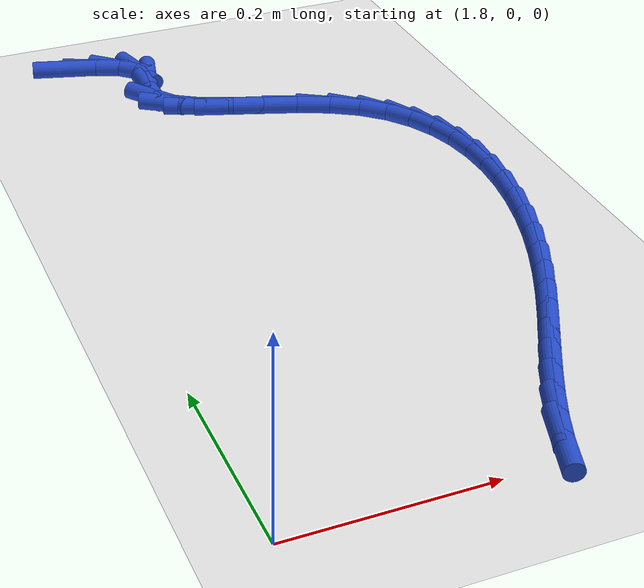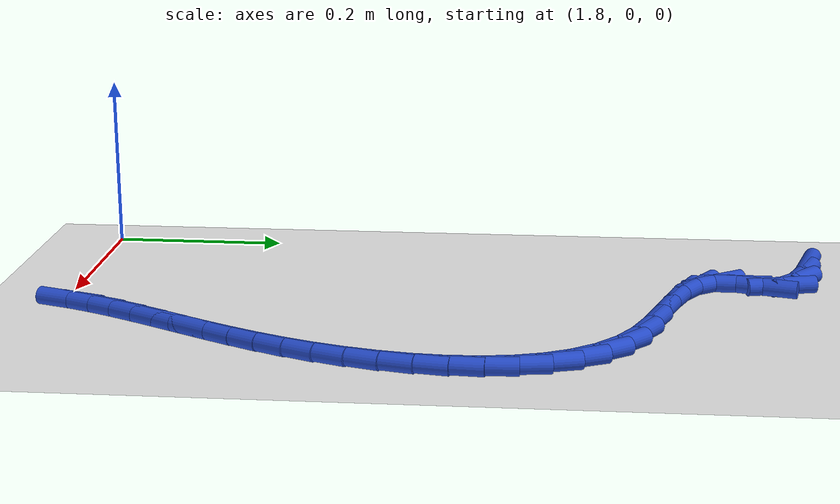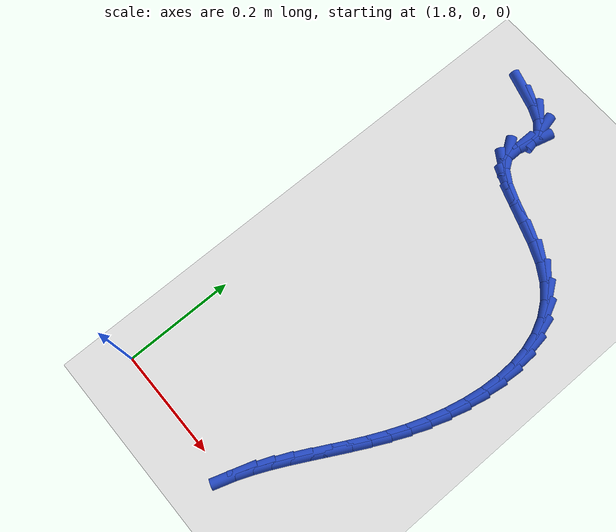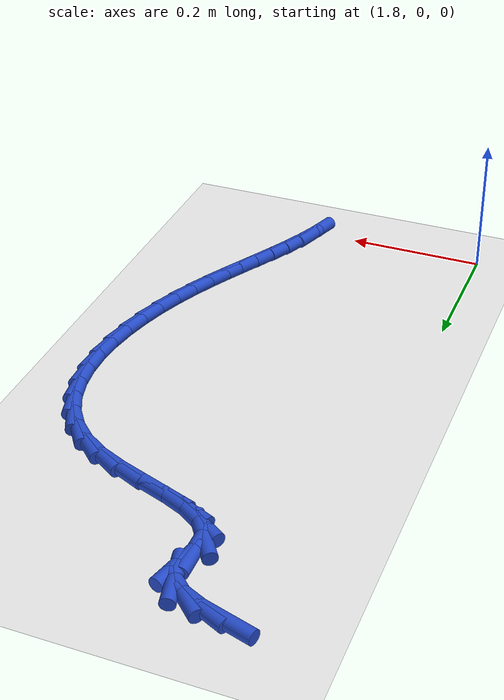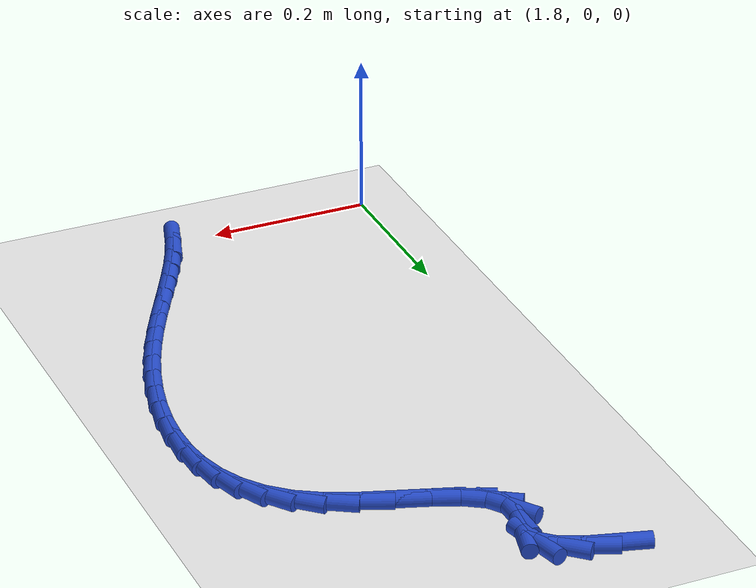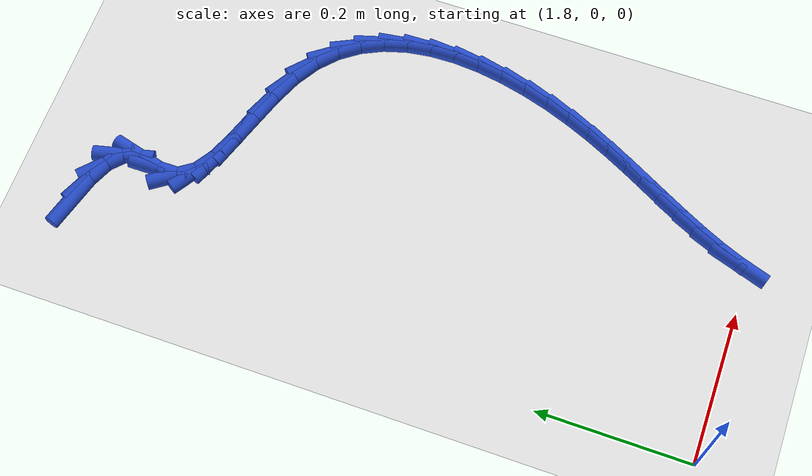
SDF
<sdf version="1.6">
 <world name="default">
  <model name="ground_plane">
   <static>1</static>
   <link name="link">
    <collision name="collision">
     <geometry><plane><normal>0 0 1</normal><size>100 100</size></plane></geometry>
     <surface><friction><ode><mu>100</mu><mu2>50</mu2></ode></friction></surface>
    </collision>
    <visual name="visual">
     <cast_shadows>0</cast_shadows>
     <geometry><plane><normal>0 0 1</normal><size>100 100</size></plane></geometry>
     <material>
      <script><uri>file://media/materials/scripts/gazebo.material</uri><name>Gazebo/WhiteGlow</name></script>
     </material>
    </visual>
   </link>
  </model>
  <model name="line">
   <link name="link_100">
    <pose>1.867361460325743 0.8388088741616112 0.01 0 1.57 -0.27823796833198544</pose>
    <collision name="collision">
     <geometry><cylinder><radius>0.01</radius><length>0.08</length></cylinder></geometry>
    </collision>
    <visual name="visual">
     <material>
      <script><name>Gazebo/Blue</name><uri>file://media/materials/scripts/gazebo.material</uri></script>
     </material>
     <geometry><cylinder><radius>0.01</radius><length>0.08</length></cylinder></geometry>
    </visual>
   </link>
   <link name="link_101">
    <pose>1.9012429825843273 0.8291306999910987 0.01 0 1.57 -0.4219172814363985</pose>
    <collision name="collision">
     <geometry><cylinder><radius>0.01</radius><length>0.08</length></cylinder></geometry>
    </collision>
    <visual name="visual">
     <material>
      <script><name>Gazebo/Blue</name><uri>file://media/materials/scripts/gazebo.material</uri></script>
     </material>
     <geometry><cylinder><radius>0.01</radius><length>0.08</length></cylinder></geometry>
    </visual>
   </link>
   <link name="link_102">
    <pose>1.9282958582179275 0.8169873631937781 0.01 0 1.57 -0.7476918393223915</pose>
    <collision name="collision">
     <geometry><cylinder><radius>0.01</radius><length>0.08</length></cylinder></geometry>
    </collision>
    <visual name="visual">
     <material>
      <script><name>Gazebo/Blue</name><uri>file://media/materials/scripts/gazebo.material</uri></script>
     </material>
     <geometry><cylinder><radius>0.01</radius><length>0.08</length></cylinder></geometry>
    </visual>
   </link>
   <link name="link_103">
    <pose>1.945835414411071 0.8007230317573236 0.01 0 1.57 -1.3330352668472683</pose>
    <collision name="collision">
     <geometry><cylinder><radius>0.01</radius><length>0.08</length></cylinder></geometry>
    </collision>
    <visual name="visual">
     <material>
      <script><name>Gazebo/Blue</name><uri>file://media/materials/scripts/gazebo.material</uri></script>
     </material>
     <geometry><cylinder><radius>0.01</radius><length>0.08</length></cylinder></geometry>
    </visual>
   </link>
   <link name="link_104">
    <pose>1.951176978348284 0.7786818736694101 0.01 0 1.57 1.3130982741134336</pose>
    <collision name="collision">
     <geometry><cylinder><radius>0.01</radius><length>0.08</length></cylinder></geometry>
    </collision>
    <visual name="visual">
     <material>
      <script><name>Gazebo/Blue</name><uri>file://media/materials/scripts/gazebo.material</uri></script>
     </material>
     <geometry><cylinder><radius>0.01</radius><length>0.08</length></cylinder></geometry>
    </visual>
   </link>
   <link name="link_105">
    <pose>1.9436593650762075 0.7501583316258833 0.01 0 1.57 -1.5613459482629726</pose>
    <collision name="collision">
     <geometry><cylinder><radius>0.01</radius><length>0.08</length></cylinder></geometry>
    </collision>
    <visual name="visual">
     <material>
      <script><name>Gazebo/Blue</name><uri>file://media/materials/scripts/gazebo.material</uri></script>
     </material>
     <geometry><cylinder><radius>0.01</radius><length>0.08</length></cylinder></geometry>
    </visual>
   </link>
   <link name="link_106">
    <pose>1.943901883203015 0.724496829686185 0.01 0 1.57 -0.9575174344387997</pose>
    <collision name="collision">
     <geometry><cylinder><radius>0.01</radius><length>0.08</length></cylinder></geometry>
    </collision>
    <visual name="visual">
     <material>
      <script><name>Gazebo/Blue</name><uri>file://media/materials/scripts/gazebo.material</uri></script>
     </material>
     <geometry><cylinder><radius>0.01</radius><length>0.08</length></cylinder></geometry>
    </visual>
   </link>
   <link name="link_107">
    <pose>1.9580053174302958 0.704458153645134 0.01 0 1.57 -0.5723472856008001</pose>
    <collision name="collision">
     <geometry><cylinder><radius>0.01</radius><length>0.08</length></cylinder></geometry>
    </collision>
    <visual name="visual">
     <material>
      <script><name>Gazebo/Blue</name><uri>file://media/materials/scripts/gazebo.material</uri></script>
     </material>
     <geometry><cylinder><radius>0.01</radius><length>0.08</length></cylinder></geometry>
    </visual>
   </link>
   <link name="link_108">
    <pose>1.9827754200669916 0.6884991432665625 0.01 0 1.57 -0.3944777715243125</pose>
    <collision name="collision">
     <geometry><cylinder><radius>0.01</radius><length>0.08</length></cylinder></geometry>
    </collision>
    <visual name="visual">
     <material>
      <script><name>Gazebo/Blue</name><uri>file://media/materials/scripts/gazebo.material</uri></script>
     </material>
     <geometry><cylinder><radius>0.01</radius><length>0.08</length></cylinder></geometry>
    </visual>
   </link>
   <link name="link_109">
    <pose>2.0150179159434285 0.6750766255796179 0.01 0 1.57 -0.32803765423257714</pose>
    <collision name="collision">
     <geometry><cylinder><radius>0.01</radius><length>0.08</length></cylinder></geometry>
    </collision>
    <visual name="visual">
     <material>
      <script><name>Gazebo/Blue</name><uri>file://media/materials/scripts/gazebo.material</uri></script>
     </material>
     <geometry><cylinder><radius>0.01</radius><length>0.08</length></cylinder></geometry>
    </visual>
   </link>
   <link name="link_110">
    <pose>2.0515385298899314 0.6626474276134482 0.01 0 1.57 -0.3323445705167335</pose>
    <collision name="collision">
     <geometry><cylinder><radius>0.01</radius><length>0.08</length></cylinder></geometry>
    </collision>
    <visual name="visual">
     <material>
      <script><name>Gazebo/Blue</name><uri>file://media/materials/scripts/gazebo.material</uri></script>
     </material>
     <geometry><cylinder><radius>0.01</radius><length>0.08</length></cylinder></geometry>
    </visual>
   </link>
   <link name="link_111">
    <pose>2.0891429867368254 0.6496683763972001 0.01 0 1.57 -0.40156317457142043</pose>
    <collision name="collision">
     <geometry><cylinder><radius>0.01</radius><length>0.08</length></cylinder></geometry>
    </collision>
    <visual name="visual">
     <material>
      <script><name>Gazebo/Blue</name><uri>file://media/materials/scripts/gazebo.material</uri></script>
     </material>
     <geometry><cylinder><radius>0.01</radius><length>0.08</length></cylinder></geometry>
    </visual>
   </link>
   <link name="link_112">
    <pose>2.1246370113144364 0.634596298960021 0.01 0 1.57 -0.5489804029437695</pose>
    <collision name="collision">
     <geometry><cylinder><radius>0.01</radius><length>0.08</length></cylinder></geometry>
    </collision>
    <visual name="visual">
     <material>
      <script><name>Gazebo/Blue</name><uri>file://media/materials/scripts/gazebo.material</uri></script>
     </material>
     <geometry><cylinder><radius>0.01</radius><length>0.08</length></cylinder></geometry>
    </visual>
   </link>
   <link name="link_113">
    <pose>2.155031932405212 0.6160036276243572 0.01 0 1.57 -0.7405928101943458</pose>
    <collision name="collision">
     <geometry><cylinder><radius>0.01</radius><length>0.08</length></cylinder></geometry>
    </collision>
    <visual name="visual">
     <material>
      <script><name>Gazebo/Blue</name><uri>file://media/materials/scripts/gazebo.material</uri></script>
     </material>
     <geometry><cylinder><radius>0.01</radius><length>0.08</length></cylinder></geometry>
    </visual>
   </link>
   <link name="link_114">
    <pose>2.1794713224064433 0.5936616950544684 0.01 0 1.57 -0.9352849158343433</pose>
    <collision name="collision">
     <geometry><cylinder><radius>0.01</radius><length>0.08</length></cylinder></geometry>
    </collision>
    <visual name="visual">
     <material>
      <script><name>Gazebo/Blue</name><uri>file://media/materials/scripts/gazebo.material</uri></script>
     </material>
     <geometry><cylinder><radius>0.01</radius><length>0.08</length></cylinder></geometry>
    </visual>
   </link>
   <link name="link_115">
    <pose>2.1983610759366377 0.5680516020348991 0.01 0 1.57 -1.1193809678577766</pose>
    <collision name="collision">
     <geometry><cylinder><radius>0.01</radius><length>0.08</length></cylinder></geometry>
    </collision>
    <visual name="visual">
     <material>
      <script><name>Gazebo/Blue</name><uri>file://media/materials/scripts/gazebo.material</uri></script>
     </material>
     <geometry><cylinder><radius>0.01</radius><length>0.08</length></cylinder></geometry>
    </visual>
   </link>
   <link name="link_116">
    <pose>2.2121235747848846 0.539663719620396 0.01 0 1.57 -1.2836807159955135</pose>
    <collision name="collision">
     <geometry><cylinder><radius>0.01</radius><length>0.08</length></cylinder></geometry>
    </collision>
    <visual name="visual">
     <material>
      <script><name>Gazebo/Blue</name><uri>file://media/materials/scripts/gazebo.material</uri></script>
     </material>
     <geometry><cylinder><radius>0.01</radius><length>0.08</length></cylinder></geometry>
    </visual>
   </link>
   <link name="link_117">
    <pose>2.221181200740273 0.5089884188657067 0.01 0 1.57 -1.4247904127490072</pose>
    <collision name="collision">
     <geometry><cylinder><radius>0.01</radius><length>0.08</length></cylinder></geometry>
    </collision>
    <visual name="visual">
     <material>
      <script><name>Gazebo/Blue</name><uri>file://media/materials/scripts/gazebo.material</uri></script>
     </material>
     <geometry><cylinder><radius>0.01</radius><length>0.08</length></cylinder></geometry>
    </visual>
   </link>
   <link name="link_118">
    <pose>2.2259563355918965 0.47651607082557856 0.01 0 1.57 -1.5437143774858515</pose>
    <collision name="collision">
     <geometry><cylinder><radius>0.01</radius><length>0.08</length></cylinder></geometry>
    </collision>
    <visual name="visual">
     <material>
      <script><name>Gazebo/Blue</name><uri>file://media/materials/scripts/gazebo.material</uri></script>
     </material>
     <geometry><cylinder><radius>0.01</radius><length>0.08</length></cylinder></geometry>
    </visual>
   </link>
   <link name="link_119">
    <pose>2.2268713611288433 0.44273704655475904 0.01 0 1.57 1.4980048587038113</pose>
    <collision name="collision">
     <geometry><cylinder><radius>0.01</radius><length>0.08</length></cylinder></geometry>
    </collision>
    <visual name="visual">
     <material>
      <script><name>Gazebo/Blue</name><uri>file://media/materials/scripts/gazebo.material</uri></script>
     </material>
     <geometry><cylinder><radius>0.01</radius><length>0.08</length></cylinder></geometry>
    </visual>
   </link>
   <link name="link_120">
    <pose>2.2243486591402055 0.4081417171079954 0.01 0 1.57 1.4135193965103776</pose>
    <collision name="collision">
     <geometry><cylinder><radius>0.01</radius><length>0.08</length></cylinder></geometry>
    </collision>
    <visual name="visual">
     <material>
      <script><name>Gazebo/Blue</name><uri>file://media/materials/scripts/gazebo.material</uri></script>
     </material>
     <geometry><cylinder><radius>0.01</radius><length>0.08</length></cylinder></geometry>
    </visual>
   </link>
   <link name="link_121">
    <pose>2.2188106114150727 0.37322045354003514 0.01 0 1.57 1.3409891378990806</pose>
    <collision name="collision">
     <geometry><cylinder><radius>0.01</radius><length>0.08</length></cylinder></geometry>
    </collision>
    <visual name="visual">
     <material>
      <script><name>Gazebo/Blue</name><uri>file://media/materials/scripts/gazebo.material</uri></script>
     </material>
     <geometry><cylinder><radius>0.01</radius><length>0.08</length></cylinder></geometry>
    </visual>
   </link>
   <link name="link_122">
    <pose>2.2106795997425355 0.33846362690562537 0.01 0 1.57 1.2774308637163867</pose>
    <collision name="collision">
     <geometry><cylinder><radius>0.01</radius><length>0.08</length></cylinder></geometry>
    </collision>
    <visual name="visual">
     <material>
      <script><name>Gazebo/Blue</name><uri>file://media/materials/scripts/gazebo.material</uri></script>
     </material>
     <geometry><cylinder><radius>0.01</radius><length>0.08</length></cylinder></geometry>
    </visual>
   </link>
   <link name="link_123">
    <pose>2.2003780059116855 0.30436160825951425 0.01 0 1.57 1.2202843189079926</pose>
    <collision name="collision">
     <geometry><cylinder><radius>0.01</radius><length>0.08</length></cylinder></geometry>
    </collision>
    <visual name="visual">
     <material>
      <script><name>Gazebo/Blue</name><uri>file://media/materials/scripts/gazebo.material</uri></script>
     </material>
     <geometry><cylinder><radius>0.01</radius><length>0.08</length></cylinder></geometry>
    </visual>
   </link>
   <link name="link_124">
    <pose>2.1883280549002633 0.2714030200460211 0.01 0 1.57 1.16924274769819</pose>
    <collision name="collision">
     <geometry><cylinder><radius>0.01</radius><length>0.08</length></cylinder></geometry>
    </collision>
    <visual name="visual">
     <material>
      <script><name>Gazebo/Blue</name><uri>file://media/materials/scripts/gazebo.material</uri></script>
     </material>
     <geometry><cylinder><radius>0.01</radius><length>0.08</length></cylinder></geometry>
    </visual>
   </link>
   <link name="link_125">
    <pose>2.174932150950263 0.23985546278864886 0.01 0 1.57 1.1277703359170286</pose>
    <collision name="collision">
     <geometry><cylinder><radius>0.01</radius><length>0.08</length></cylinder></geometry>
    </collision>
    <visual name="visual">
     <material>
      <script><name>Gazebo/Blue</name><uri>file://media/materials/scripts/gazebo.material</uri></script>
     </material>
     <geometry><cylinder><radius>0.01</radius><length>0.08</length></cylinder></geometry>
    </visual>
   </link>
   <link name="link_126">
    <pose>2.1605537395464243 0.20955210614679295 0.01 0 1.57 1.0972598720385593</pose>
    <collision name="collision">
     <geometry><cylinder><radius>0.01</radius><length>0.08</length></cylinder></geometry>
    </collision>
    <visual name="visual">
     <material>
      <script><name>Gazebo/Blue</name><uri>file://media/materials/scripts/gazebo.material</uri></script>
     </material>
     <geometry><cylinder><radius>0.01</radius><length>0.08</length></cylinder></geometry>
    </visual>
   </link>
   <link name="link_127">
    <pose>2.145551724625366 0.180275476771333 0.01 0 1.57 1.0785414049380029</pose>
    <collision name="collision">
     <geometry><cylinder><radius>0.01</radius><length>0.08</length></cylinder></geometry>
    </collision>
    <visual name="visual">
     <material>
      <script><name>Gazebo/Blue</name><uri>file://media/materials/scripts/gazebo.material</uri></script>
     </material>
     <geometry><cylinder><radius>0.01</radius><length>0.08</length></cylinder></geometry>
    </visual>
   </link>
   <link name="link_128">
    <pose>2.130285010123709 0.15180810131314867 0.01 0 1.57 1.072344720869784</pose>
    <collision name="collision">
     <geometry><cylinder><radius>0.01</radius><length>0.08</length></cylinder></geometry>
    </collision>
    <visual name="visual">
     <material>
      <script><name>Gazebo/Blue</name><uri>file://media/materials/scripts/gazebo.material</uri></script>
     </material>
     <geometry><cylinder><radius>0.01</radius><length>0.08</length></cylinder></geometry>
    </visual>
   </link>
   <link name="link_129">
    <pose>2.1151124999780704 0.12393250642311962 0.01 0 1.57 1.0793666955011805</pose>
    <collision name="collision">
     <geometry><cylinder><radius>0.01</radius><length>0.08</length></cylinder></geometry>
    </collision>
    <visual name="visual">
     <material>
      <script><name>Gazebo/Blue</name><uri>file://media/materials/scripts/gazebo.material</uri></script>
     </material>
     <geometry><cylinder><radius>0.01</radius><length>0.08</length></cylinder></geometry>
    </visual>
   </link>
   <link name="link_130">
    <pose>2.10039309812507 0.0964312187521254 0.01 0 1.57 1.1002923990779943</pose>
    <collision name="collision">
     <geometry><cylinder><radius>0.01</radius><length>0.08</length></cylinder></geometry>
    </collision>
    <visual name="visual">
     <material>
      <script><name>Gazebo/Blue</name><uri>file://media/materials/scripts/gazebo.material</uri></script>
     </material>
     <geometry><cylinder><radius>0.01</radius><length>0.08</length></cylinder></geometry>
    </visual>
   </link>
   <link name="link_131">
    <pose>2.086485708501326 0.06908676495104579 0.01 0 1.57 1.1357455373307215</pose>
    <collision name="collision">
     <geometry><cylinder><radius>0.01</radius><length>0.08</length></cylinder></geometry>
    </collision>
    <visual name="visual">
     <material>
      <script><name>Gazebo/Blue</name><uri>file://media/materials/scripts/gazebo.material</uri></script>
     </material>
     <geometry><cylinder><radius>0.01</radius><length>0.08</length></cylinder></geometry>
    </visual>
   </link>
   <link name="link_132">
    <pose>2.0737492350434596 0.041681671670760395 0.01 0 1.57 1.1861436244567034</pose>
    <collision name="collision">
     <geometry><cylinder><radius>0.01</radius><length>0.08</length></cylinder></geometry>
    </collision>
    <visual name="visual">
     <material>
      <script><name>Gazebo/Blue</name><uri>file://media/materials/scripts/gazebo.material</uri></script>
     </material>
     <geometry><cylinder><radius>0.01</radius><length>0.08</length></cylinder></geometry>
    </visual>
   </link>
   <link name="link_133">
    <pose>2.0625425816880876 0.013998465562148767 0.01 0 1.57 1.2514431467478326</pose>
    <collision name="collision">
     <geometry><cylinder><radius>0.01</radius><length>0.08</length></cylinder></geometry>
    </collision>
    <visual name="visual">
     <material>
      <script><name>Gazebo/Blue</name><uri>file://media/materials/scripts/gazebo.material</uri></script>
     </material>
     <geometry><cylinder><radius>0.01</radius><length>0.08</length></cylinder></geometry>
    </visual>
   </link>
  </model>
 </world>
</sdf>
